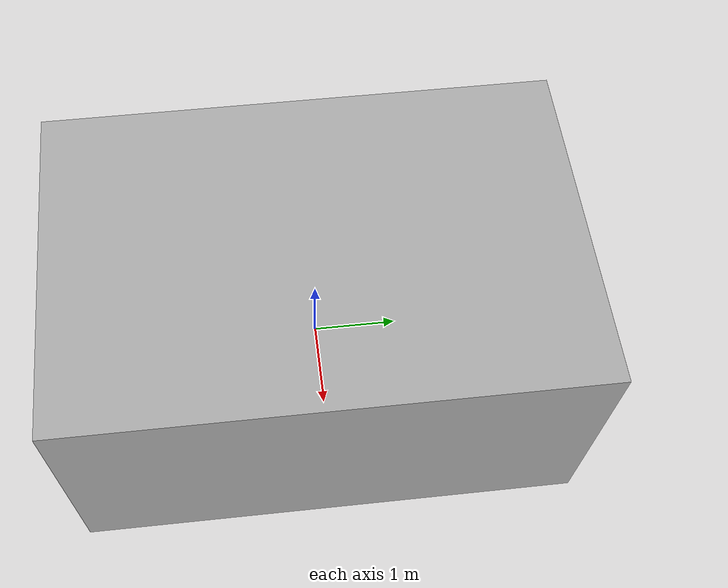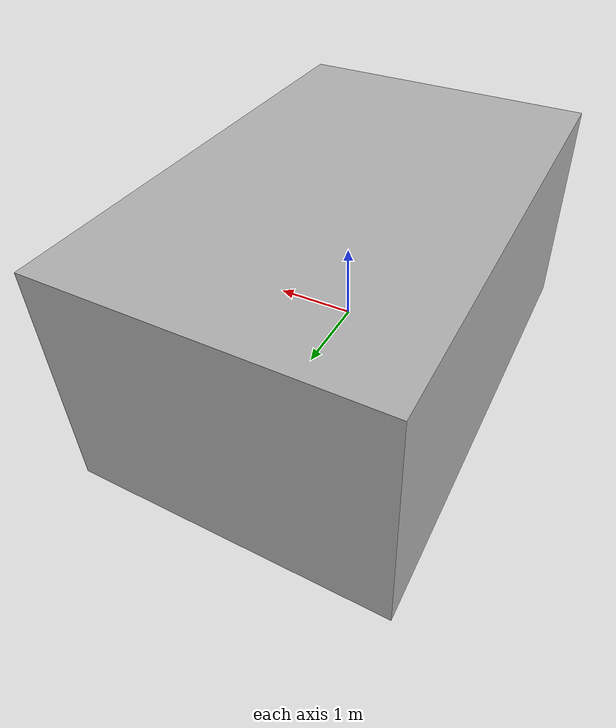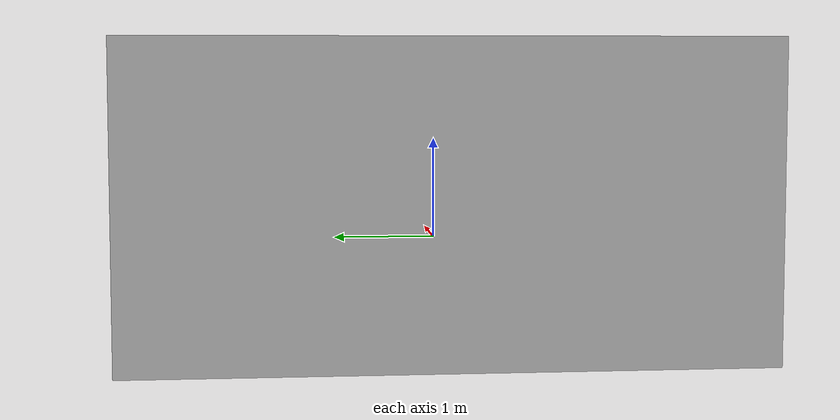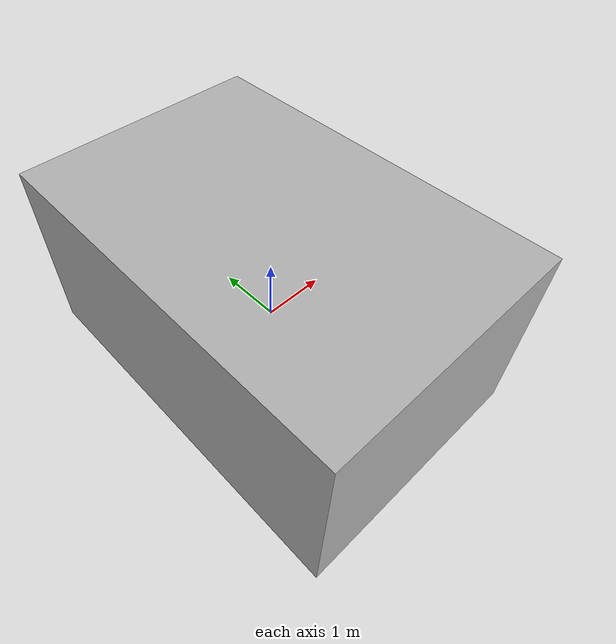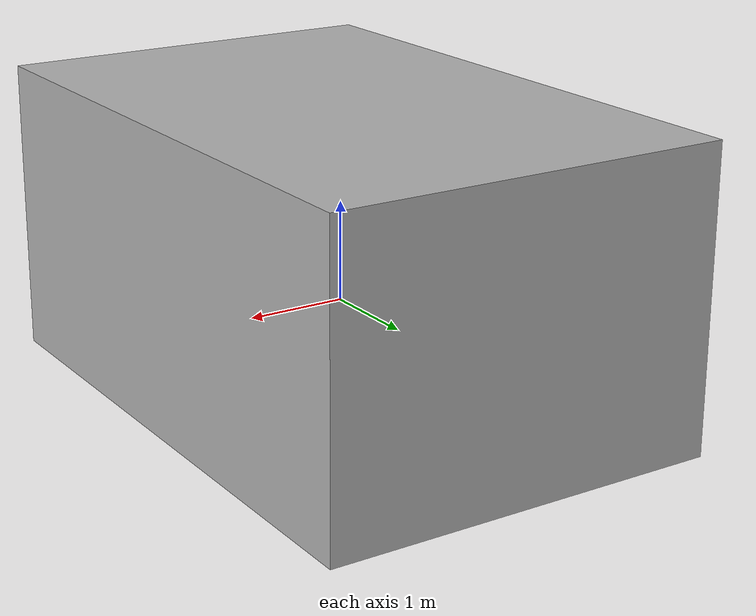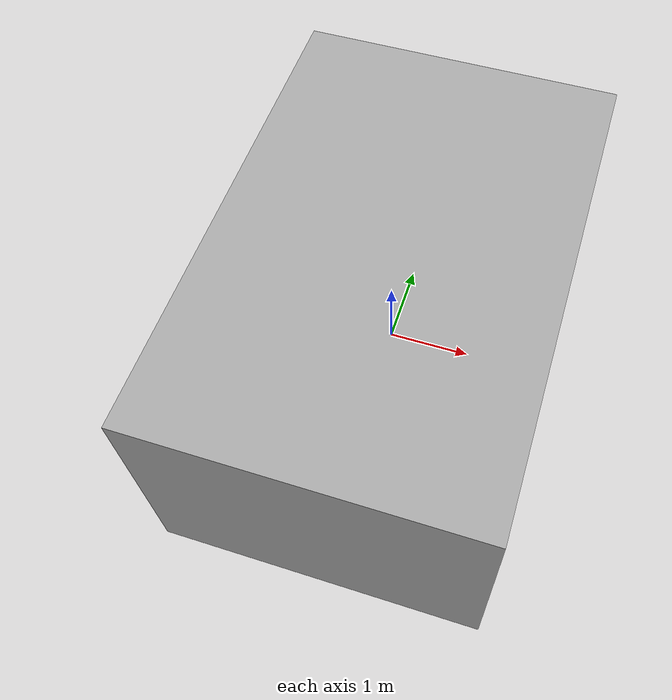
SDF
<?xml version="1.0" ?>
<sdf version="1.6">
  <model name="box_obstacle">
    <static>true</static> <!-- 静态模型，不受重力和物理作用 -->
    <link name="link">
      <pose>0 0 0.5 0 0 0</pose> <!-- 高度放在地面上方 0.5 m -->
      <collision name="collision">
        <geometry>
          <box>
            <size>4 6 3</size> <!-- 长宽高 -->
          </box>
        </geometry>
      </collision>
      <visual name="visual">
        <geometry>
          <box>
            <size>4 6 3</size>
          </box>
        </geometry>
        <material>
          <ambient>0.7 0.7 0.7 1</ambient> <!-- 灰色 -->
          <diffuse>0.7 0.7 0.7 1</diffuse>
        </material>
      </visual>
    </link>
  </model>
</sdf>
